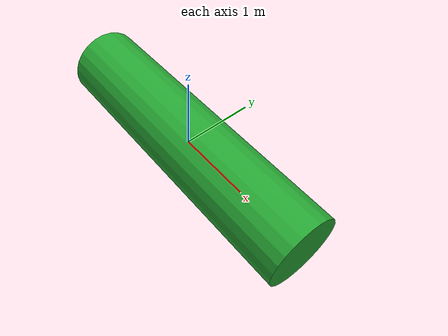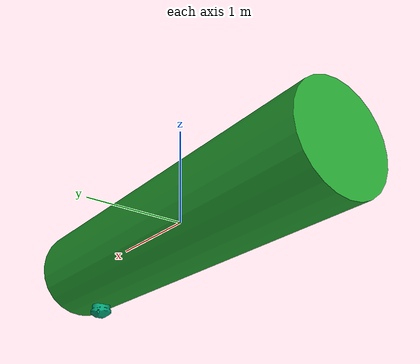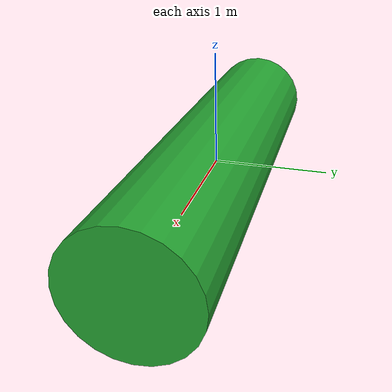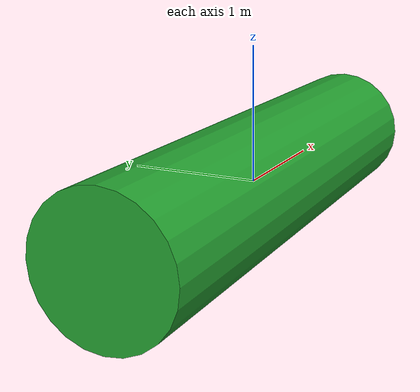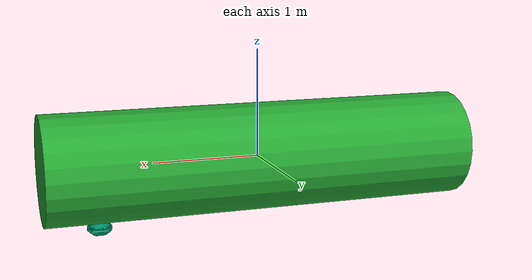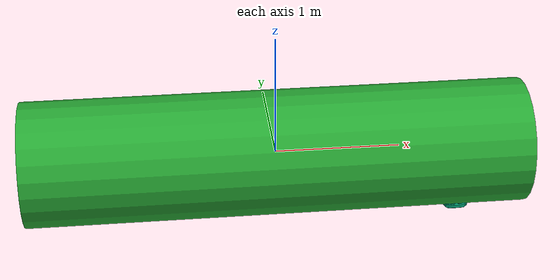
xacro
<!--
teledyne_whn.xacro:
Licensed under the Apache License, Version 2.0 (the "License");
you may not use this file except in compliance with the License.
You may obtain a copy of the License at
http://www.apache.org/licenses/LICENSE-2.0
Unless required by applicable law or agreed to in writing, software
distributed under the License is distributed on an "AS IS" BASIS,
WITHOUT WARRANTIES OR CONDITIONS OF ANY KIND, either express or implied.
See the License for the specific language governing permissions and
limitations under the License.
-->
<?xml version="1.0"?>

<robot xmlns:xacro="http://www.ros.org/wiki/xacro" name="teledyne_whn">

  <xacro:include filename="$(find dvl_gazebo)/urdf/teledyne_whn.xacro"/>

  <link name="cylinderbot_base_link"/>

  <link name="cylinderbot_link">
    <inertial>
      <origin xyz="0 0 0" rpy="0 0 0"/>
      <mass value="200"/>
      <inertia
        ixx="279.17" ixy="0.0" ixz="0.0"
        iyy="279.17" iyz="0.0"
        izz="25.0"/>
    </inertial>
    <visual>
      <geometry>
        <cylinder length="4.0" radius="0.5"/>
      </geometry>
      <origin xyz="0 0 0" rpy="0 ${0.5*pi} 0"/>
    </visual>
    <collision>
      <geometry>
        <cylinder length="4.0" radius="0.5"/>
      </geometry>
      <origin xyz="0 0 0" rpy="0 ${0.5*pi} 0"/>
    </collision>
  </link>
  <gazebo reference="cylinderbot_link">
    <material>Gazebo/Green</material>
  </gazebo>

  <joint name="cylinderbot_base_joint" type="fixed">
    <origin xyz="0 0 0" rpy="0 0 0"/>
    <parent link="cylinderbot_base_link"/>
    <child link="cylinderbot_link"/>
  </joint>

  <xacro:dvl_sensor_enu namespace="dvl" parent_link="cylinderbot_base_link">
    <origin xyz="1.5 0 -0.5" rpy="0 ${0.5*pi} 0"/>
  </xacro:dvl_sensor_enu>

  <!-- Turn gravity (off) for now so that the (unpowered) robot doesn't sink like
       a rock.  Can remove this once the neutral buoyancy issue (#4) is resolved -->
  <gazebo reference="cylinderbot_link">
    <turnGravityOff>true</turnGravityOff>
  </gazebo>

</robot>

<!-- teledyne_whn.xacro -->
<robot xmlns:xacro="http://www.ros.org/wiki/xacro">

  <!-- Generates a tiny "no-collision" cylinder for incorporation into a link
       that we do not want to collide with anything (e.g., individual DVL sonars) -->
  <xacro:macro name="no_collision">
    <collision>
      <geometry>
        <cylinder length="${0.000001}" radius="${0.000001}"/>
      </geometry>
      <origin xyz="0 0 0" rpy="0 ${0.5*pi} 0"/>
    </collision>
  </xacro:macro>

  <!-- Generates a Teledyne WHN URDF model and attaches it to a parent link
       Sensor parameters align with those in the WHN 600 datasheet -->
  <xacro:macro name="dvl_macro" params="namespace parent_link *origin inertial_reference_frame">
    <xacro:dvl_plugin_macro
      namespace="${namespace}"
      suffix=""
      parent_link="${parent_link}"
      reference_frame="${inertial_reference_frame}"
      update_rate="7"
      topic="dvl"
      noise_sigma="0.005"
      noise_amplitude="0.005"
      scale="1">
      <xacro:insert_block name="origin"/>
    </xacro:dvl_plugin_macro>
  </xacro:macro>

  <!-- Generates an ENU Teledyne WHN URDF model and attaches it to a parent link -->
  <xacro:macro name="dvl_sensor_enu" params="namespace parent_link *origin">
    <xacro:dvl_macro
      namespace="${namespace}"
      parent_link="${parent_link}"
      inertial_reference_frame="world">
      <xacro:insert_block name="origin"/>
    </xacro:dvl_macro>
  </xacro:macro>

  <!-- Generates an NED Teledyne WHN URDF model and attaches it to a parent link -->
  <xacro:macro name="dvl_sensor_ned" params="namespace parent_link *origin">
    <xacro:dvl_macro
      namespace="${namespace}"
      parent_link="${parent_link}"
      inertial_reference_frame="world_ned">
      <xacro:insert_block name="origin"/>
    </xacro:dvl_macro>
  </xacro:macro>

  <!-- Generates a single ranging sonar for the DVL -->
  <xacro:macro name="dvl_single_sonar" params="namespace topic suffix index pitch yaw update_rate">
    <link name="${namespace}/dvl${suffix}_sonar${index}_link">
      <inertial>
        <mass value="0.001"/>
        <origin xyz="0 0 0" rpy="0 0 0"/>
        <inertia ixx="0.000000017" ixy="0" ixz="0" iyy="0.000000017" iyz="0" izz="0.000000017"/>
      </inertial>
      <xacro:no_collision/>
    </link>

    <joint name="${namespace}/dvl${suffix}_sonar${index}_joint" type="revolute">
      <origin xyz="0 0 0" rpy="0 ${pitch} ${yaw}"/>
      <parent link="${namespace}/dvl${suffix}_link"/>
      <child link="${namespace}/dvl${suffix}_sonar${index}_link"/>
      <limit upper="0" lower="0" effort="0" velocity="0"/>
      <axis xyz="1 0 0"/>
    </joint>

    <gazebo reference="${namespace}/dvl${suffix}_sonar${index}_link">
      <sensor type="ray" name="dvl${suffix}_sonar${index}">
        <pose>0 0 0 0 0 0</pose>
        <update_rate>${update_rate}</update_rate>
        <visualize>true</visualize>
        <ray>
          <scan>
            <horizontal>
              <samples>3</samples>
              <resolution>1</resolution>
              <min_angle>-0.03</min_angle>
              <max_angle>0.03</max_angle>
            </horizontal>
            <vertical>
              <samples>3</samples>
              <resolution>1</resolution>
              <min_angle>-0.03</min_angle>
              <max_angle>0.03</max_angle>
            </vertical>
          </scan>
          <range>
            <min>0.7</min>
            <max>90</max>
            <resolution>0.01</resolution>
          </range>
        </ray>

        <plugin filename="libgazebo_ros_range.so" name="dvl${suffix}_sonar${index}">
          <gaussianNoise>0.005</gaussianNoise>
          <alwaysOn>true</alwaysOn>
          <updateRate>${update_rate}</updateRate>
          <topicName>${namespace}/${topic}${suffix}_sonar${index}</topicName>
          <frameName>${namespace}/dvl${suffix}_sonar${index}_link</frameName>
          <fov>0.06</fov>
          <radiation>ultrasound</radiation>
        </plugin>
      </sensor>
    </gazebo>

    <!-- Turn gravity (off) for now so that the (unpowered) robot doesn't sink.
         Can remove this once the neutral buoyancy issue (#4) is resolved -->
    <gazebo reference="${namespace}/dvl${suffix}_sonar${index}_link">
      <turnGravityOff>true</turnGravityOff>
    </gazebo>
  </xacro:macro>

  <!-- Generates the DVL URDF model and plugin -->
  <xacro:macro name="dvl_plugin_macro"
    params="namespace suffix parent_link topic scale *origin update_rate
    reference_frame noise_sigma noise_amplitude">
    <link name="${namespace}/dvl${suffix}_link">
      <inertial>
        <mass value="8.8"/>
        <origin xyz="0 0 0" rpy="0 0 0"/>
        <inertia ixx="0.071732122" ixy="0" ixz="0" iyy="0.071732122" iyz="0" izz="0.055786544"/>
      </inertial>
      <visual>
        <geometry>
          <mesh filename="package://dvl_gazebo/meshes/WorkhorseNavigator.dae"/>
        </geometry>
        <origin xyz="0 0 0" rpy="0 1.5707963267948966 0"/>
      </visual>
      <collision>
        <geometry>
          <cylinder length="0.2445" radius="0.1126"/>
        </geometry>
        <origin xyz="0 0 0" rpy="0 1.5707963267948966 0"/>
      </collision>
    </link>

    <joint name="${namespace}/dvl${suffix}_joint" type="revolute">
      <xacro:insert_block name="origin"/>
      <parent link="${parent_link}"/>
      <child link="${namespace}/dvl${suffix}_link"/>
      <limit upper="0" lower="0" effort="0" velocity="0"/>
      <axis xyz="1 0 0"/>
    </joint>

    <xacro:dvl_single_sonar
      namespace="${namespace}" topic="${topic}" suffix=""
      index="0" pitch="-0.52" yaw="0.0" update_rate="${update_rate}">
    </xacro:dvl_single_sonar>

    <xacro:dvl_single_sonar
      namespace="${namespace}" topic="${topic}" suffix=""
      index="1" pitch="0" yaw="0.52" update_rate="${update_rate}">
    </xacro:dvl_single_sonar>

    <xacro:dvl_single_sonar
      namespace="${namespace}" topic="${topic}" suffix=""
      index="2" pitch="0.52" yaw="0.0" update_rate="${update_rate}">
    </xacro:dvl_single_sonar>

    <xacro:dvl_single_sonar
      namespace="${namespace}" topic="${topic}" suffix=""
      index="3" pitch="0.0" yaw="-0.52" update_rate="${update_rate}">
    </xacro:dvl_single_sonar>

    <gazebo>
      <plugin filename="libuuv_gazebo_ros_dvl_plugin.so" name="libuuv_gazebo_dvl${suffix}_plugin">
        <robot_namespace>${namespace}</robot_namespace> <!-- (string, required): ros namespace in which the messages are published -->
        <link_name>${parent_link}</link_name> <!-- (string, required): name of the body which holds the IMU sensor -->
        <sensor_topic>${topic}${suffix}</sensor_topic> <!-- (string): name of the sensor output topic and prefix of service names -->
        <update_rate>${update_rate}</update_rate> <!-- Update period [s] -->
        <noise_sigma>${noise_sigma}</noise_sigma> <!-- std dev of position estimates in x, y, z [m/s] -->
        <noise_amplitude>${noise_amplitude}</noise_amplitude>
        <enable_gazebo_messages>false</enable_gazebo_messages>
        <enable_local_ned_frame>false</enable_local_ned_frame>
        <static_reference_frame>${reference_frame}</static_reference_frame>
        <!-- Declaring the beams -->
        <beam_link_name_0>${namespace}/dvl_sonar0_link</beam_link_name_0>
        <beam_link_name_1>${namespace}/dvl_sonar1_link</beam_link_name_1>
        <beam_link_name_2>${namespace}/dvl_sonar2_link</beam_link_name_2>
        <beam_link_name_3>${namespace}/dvl_sonar3_link</beam_link_name_3>
        <!-- Declaring the beam output topics -->
        <beam_topic_0>${topic}${suffix}_sonar0</beam_topic_0>
        <beam_topic_1>${topic}${suffix}_sonar1</beam_topic_1>
        <beam_topic_2>${topic}${suffix}_sonar2</beam_topic_2>
        <beam_topic_3>${topic}${suffix}_sonar3</beam_topic_3>
      </plugin>
    </gazebo>

    <!-- Turn gravity (off) for now so that the (unpowered) robot doesn't sink.
         Can remove this once the neutral buoyancy issue (#4) is resolved -->
    <gazebo reference="${namespace}/dvl${suffix}_link">
      <turnGravityOff>true</turnGravityOff>
    </gazebo>
  </xacro:macro>
</robot>
